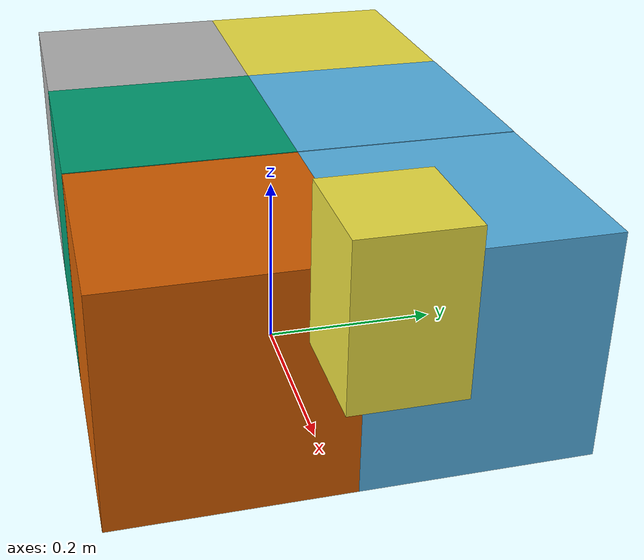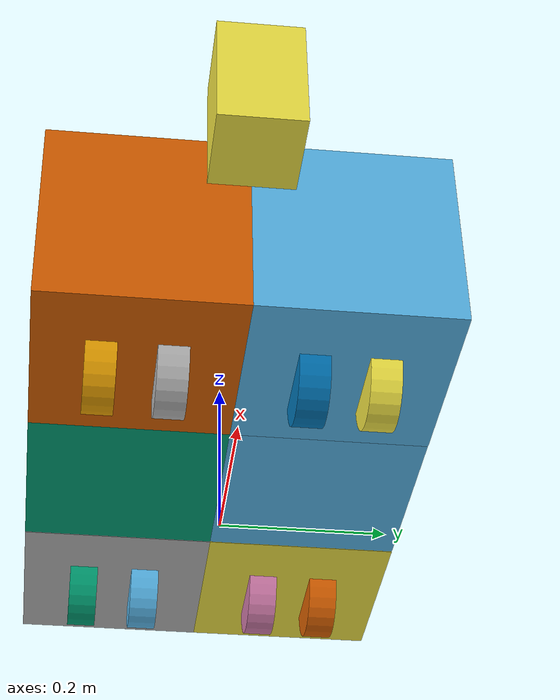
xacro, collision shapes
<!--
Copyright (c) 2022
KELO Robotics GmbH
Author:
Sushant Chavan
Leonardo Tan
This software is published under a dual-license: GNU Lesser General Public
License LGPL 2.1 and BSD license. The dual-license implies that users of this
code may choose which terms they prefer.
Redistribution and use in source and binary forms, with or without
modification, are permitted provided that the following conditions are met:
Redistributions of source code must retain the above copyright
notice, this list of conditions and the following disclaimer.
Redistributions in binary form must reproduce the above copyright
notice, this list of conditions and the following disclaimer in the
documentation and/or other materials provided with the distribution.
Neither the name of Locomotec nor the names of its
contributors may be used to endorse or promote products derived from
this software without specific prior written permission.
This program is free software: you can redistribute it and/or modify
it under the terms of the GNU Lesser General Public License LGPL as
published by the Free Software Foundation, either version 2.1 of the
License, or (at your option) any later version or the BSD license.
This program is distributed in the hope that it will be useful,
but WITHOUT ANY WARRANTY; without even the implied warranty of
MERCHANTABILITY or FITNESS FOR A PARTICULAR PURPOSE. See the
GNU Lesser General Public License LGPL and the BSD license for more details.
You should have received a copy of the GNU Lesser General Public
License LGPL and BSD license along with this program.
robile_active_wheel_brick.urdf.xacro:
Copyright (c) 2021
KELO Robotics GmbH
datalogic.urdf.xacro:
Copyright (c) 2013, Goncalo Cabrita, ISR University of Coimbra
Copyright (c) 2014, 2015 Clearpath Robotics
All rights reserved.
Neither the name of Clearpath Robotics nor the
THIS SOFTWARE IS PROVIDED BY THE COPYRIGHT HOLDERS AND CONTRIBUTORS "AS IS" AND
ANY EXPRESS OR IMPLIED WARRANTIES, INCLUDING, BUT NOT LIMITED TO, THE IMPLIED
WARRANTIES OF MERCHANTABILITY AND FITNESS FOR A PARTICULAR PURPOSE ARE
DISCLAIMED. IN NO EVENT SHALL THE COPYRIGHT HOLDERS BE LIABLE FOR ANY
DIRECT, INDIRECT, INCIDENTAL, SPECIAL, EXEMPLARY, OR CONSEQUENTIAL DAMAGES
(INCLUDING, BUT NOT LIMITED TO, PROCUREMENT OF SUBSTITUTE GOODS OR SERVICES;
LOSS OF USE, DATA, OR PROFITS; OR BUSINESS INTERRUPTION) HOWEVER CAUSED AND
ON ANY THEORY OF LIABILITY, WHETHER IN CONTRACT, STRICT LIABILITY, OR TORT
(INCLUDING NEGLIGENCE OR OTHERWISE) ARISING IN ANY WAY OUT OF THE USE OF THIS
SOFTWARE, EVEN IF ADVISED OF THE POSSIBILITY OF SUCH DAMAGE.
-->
<?xml version='1.0'?>

<robot xmlns:xacro="http://ros.org/wiki/xacro" name="4_wheel_lidar_config" >

    <xacro:arg name="movable_joints" default="true"/>

    <!-- Include desired robile bricks -->
    <xacro:include filename="$(find robile_description)/urdf/robile_bricks/robile_active_wheel_brick.urdf.xacro" />
    <xacro:include filename="$(find robile_description)/urdf/robile_bricks/robile_cpu_brick.urdf.xacro" />
    <xacro:include filename="$(find robile_description)/urdf/robile_bricks/robile_master_battery_brick.urdf.xacro" />
    <xacro:include filename="$(find robile_description)/urdf/sensors/datalogic.urdf.xacro" />

    <link name="base_link"/>

    <!-- Build platform using robile bricks -->
    <xacro:robile_active_wheel_brick name="robile_1" parent="base_link" movable_joints="$(arg movable_joints)">
        <origin xyz="0.233 0.1165 0.05" rpy="0.0 0.0 0.0"/>
    </xacro:robile_active_wheel_brick>

    <xacro:robile_active_wheel_brick name="robile_2" parent="base_link" movable_joints="$(arg movable_joints)">
        <origin xyz="0.233 -0.1165 0.05" rpy="0.0 0.0 0.0"/>
    </xacro:robile_active_wheel_brick>

    <xacro:robile_cpu_brick name="robile_3" parent="base_link">
        <origin xyz="0.0 0.1165 0.05" rpy="0.0 0.0 0.0"/>
    </xacro:robile_cpu_brick>

    <xacro:robile_master_battery_brick name="robile_4" parent="base_link">
        <origin xyz="0.0 -0.1165 0.05" rpy="0.0 0.0 0.0"/>
    </xacro:robile_master_battery_brick>

    <xacro:robile_active_wheel_brick name="robile_5" parent="base_link" movable_joints="$(arg movable_joints)">
        <origin xyz="-0.233 0.1165 0.05" rpy="0.0 0.0 0.0"/>
    </xacro:robile_active_wheel_brick>

    <xacro:robile_active_wheel_brick name="robile_6" parent="base_link" movable_joints="$(arg movable_joints)">
        <origin xyz="-0.233 -0.1165 0.05" rpy="0.0 0.0 0.0"/>
    </xacro:robile_active_wheel_brick>

    <!-- Datalogic LASER -->
    <xacro:datalogic name="base_laser_front" parent="base_link" topic="base_scan">
        <origin xyz="0.43 0.0 0.32" rpy="0 0 0"/>
    </xacro:datalogic>

</robot>

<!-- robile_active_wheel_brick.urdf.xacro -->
<robot xmlns:xacro="http://www.ros.org/wiki/xacro">

    <xacro:macro name="robile_active_wheel_brick" params="name parent *origin">

        <!-- Include xacro files-->
        <xacro:include filename="$(find robile_description)/urdf/base_macros/robile_body.urdf.xacro" />
        <xacro:include filename="$(find robile_description)/urdf/base_macros/kelo_drive.urdf.xacro" />

        <joint name="${name}_joint" type="fixed">
            <xacro:insert_block name="origin" />
            <parent link="${parent}"/>
            <child link="${name}_link" />
        </joint>

        <xacro:robile_body name="${name}" with_wheel="true" color="red"/>

        <xacro:kelo_drive name="${name}_drive" parent="${name}_link">
            <origin xyz="0 0 0" rpy="0 0 0.0"/>
        </xacro:kelo_drive>

    </xacro:macro>

</robot>

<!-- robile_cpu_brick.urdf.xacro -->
<robot xmlns:xacro="http://www.ros.org/wiki/xacro">

    <xacro:macro name="robile_cpu_brick" params="name parent *origin">

        <!-- Properties for cpu brick -->
        <xacro:property name="color" value="yellow"/>
        <xacro:property name="robile_size_x" value="0.233"/>
        <xacro:property name="robile_size_y" value="0.233"/>
        <xacro:property name="robile_size_z" value="0.239"/>

        <joint name="${name}_joint" type="fixed">
            <xacro:insert_block name="origin" />
            <parent link="${parent}"/>
            <child link="${name}_link" />
        </joint>

        <link name="${name}_link">
            <!-- Aluminium casing -->
            <visual>
                <origin xyz="0 0 0" rpy="0 0 0"/>
                <geometry>
                    <mesh filename="package://robile_description/meshes/robile_brick_housing/general_brick_housing.dae" scale="1 1 1"/>
                </geometry>
            </visual>

            <!-- robile lid -->
            <visual>
                <origin xyz="0 0 0" rpy="0 0 0"/>
                <geometry>
                    <mesh filename="package://robile_description/meshes/robile_brick_housing/lid.dae" scale="1 1 1"/>
                </geometry>
            </visual>

            <!-- robile lid cover (color passed as a parameter) -->
            <visual>
                <origin xyz="0 0 0" rpy="0 0 0"/>
                <geometry>
                    <mesh filename="package://robile_description/meshes/robile_brick_housing/lid_cover_${color}.dae" scale="1 1 1"/>
                </geometry>
            </visual>

            <!-- Collision box for brick housing -->
            <collision>
                <origin xyz="0 0 ${robile_size_z/2}" rpy="0 0 0"/>
                <geometry>
                    <box size="${robile_size_x} ${robile_size_y} ${robile_size_z}" />
                </geometry>
            </collision>

            <!-- Inertia for cpu brick -->
            <inertial>
                <mass value="6.44075" />
                <origin xyz="0.00413 0.0053 0.10792" />
                <inertia  ixx="0.059819" ixy="0.000584" ixz="-0.000138" iyy="0.059845" iyz="-0.000069" izz="0.06767" />
            </inertial>

        </link>

    </xacro:macro>

</robot>

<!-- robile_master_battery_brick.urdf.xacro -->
<robot xmlns:xacro="http://www.ros.org/wiki/xacro">

    <xacro:macro name="robile_master_battery_brick" params="name parent *origin">
        <!-- Properties for master battery brick -->
        <xacro:property name="color" value="green"/>
        <xacro:property name="robile_size_x" value="0.233"/>
        <xacro:property name="robile_size_y" value="0.233"/>
        <xacro:property name="robile_size_z" value="0.239"/>

        <joint name="${name}_joint" type="fixed">
            <xacro:insert_block name="origin" />
            <parent link="${parent}"/>
            <child link="${name}_link" />
        </joint>

        <link name="${name}_link">
            <!-- Aluminium casing -->
            <visual>
                <origin xyz="0 0 0" rpy="0 0 0"/>
                <geometry>
                    <mesh filename="package://robile_description/meshes/robile_brick_housing/general_brick_housing.dae" scale="1 1 1"/>
                </geometry>
            </visual>

            <!-- robile lid -->
            <visual>
                <origin xyz="0 0 0" rpy="0 0 0"/>
                <geometry>
                    <mesh filename="package://robile_description/meshes/robile_brick_housing/lid.dae" scale="1 1 1"/>
                </geometry>
            </visual>

            <!-- robile lid cover (color passed as a parameter) -->
            <visual>
                <origin xyz="0 0 0" rpy="0 0 0"/>
                <geometry>
                    <mesh filename="package://robile_description/meshes/robile_brick_housing/lid_cover_${color}.dae" scale="1 1 1"/>
                </geometry>
            </visual>

            <!-- Collision box for brick housing -->
            <collision>
                <origin xyz="0 0 ${robile_size_z/2}" rpy="0 0 0"/>
                <geometry>
                    <box size="${robile_size_x} ${robile_size_y} ${robile_size_z}" />
                </geometry>
            </collision>

            <!-- Inertia for master battery brick -->
            <inertial>
                <mass value="11.649" />
                <origin xyz="0 -0.00012 0.09665" />
                <inertia  ixx="0.090592" ixy="-0.0000008" ixz="0.000011" iyy="0.097288" iyz="0.000217" izz="0.101994" />
            </inertial>

        </link>

    </xacro:macro>

</robot>

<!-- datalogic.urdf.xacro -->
<robot xmlns:xacro="http://www.ros.org/wiki/xacro">

    <xacro:include filename="$(find robile_description)/urdf/sensors/common.xacro" />

    <xacro:macro name="datalogic" params="*origin name:=base_laser_front
                                          topic:=base_scan parent:=base_link
                                          sample_size:=540 update_rate:=10
                                          min_angle:=-2.35619 max_angle:=2.35619
                                          min_range:=0.1 max_range:=30.0
                                          robot_namespace:=/ use_gpu:=true
                                          visualize:=false" >

        <joint name="${name}_joint" type="fixed">
            <axis xyz="0 1 0" />
            <xacro:insert_block name="origin"/>
            <parent link="${parent}"/>
            <child link="${name}_link"/>
        </joint>

        <link name="${name}_link">
            <inertial>
                <mass value="1.1" />
                <origin xyz="0 0 -0.05" rpy="0 0 0" />
                <inertia ixx="${0.0833333 * 1.1 * (0.102*0.102 + 0.152*0.152)}" ixy="0.0" ixz="0.0"
                         iyy="${0.0833333 * 1.1 * (0.105*0.105 + 0.152*0.152)}" iyz="0.0"
                         izz="${0.0833333 * 1.1 * (0.105*0.105 + 0.102*0.102)}" />
            </inertial>
            <visual>
                <origin xyz="-0.1 -0.08 -0.05" rpy="0 0 3.14159" />
                <geometry>
                    <!-- Origin of this mesh is the focal point of the LIDAR. -->
                    <mesh filename="package://robile_description/meshes/sensors/datalogic.dae" />
                </geometry>
            </visual>
            <collision>
                <origin xyz="-0.025 0 -0.025" rpy="0 0 0" />
                <geometry>
                    <box size="0.105 0.1 0.15" />
                </geometry>
            </collision>
        </link>

        <xacro:if value="${use_gpu}">
            <xacro:gazebo_laser_plugin name="${name}" topic="${topic}" sample_size="${sample_size}"
                                       update_rate="${update_rate}" min_angle="${min_angle}"
                                       max_angle="${max_angle}" min_range="${min_range}" max_range="${max_range}"
                                       robot_namespace="${robot_namespace}" visualize="${visualize}"
                                       sensor_type="gpu_ray" plugin_filename="libgazebo_ros_gpu_laser"/>
        </xacro:if>
        <xacro:unless value="${use_gpu}">
            <xacro:gazebo_laser_plugin name="${name}" topic="${topic}" sample_size="${sample_size}"
                                       update_rate="${update_rate}" min_angle="${min_angle}"
                                       max_angle="${max_angle}" min_range="${min_range}" max_range="${max_range}"
                                       robot_namespace="${robot_namespace}" visualize="${visualize}"
                                       sensor_type="ray" plugin_filename="libgazebo_ros_laser"/>
        </xacro:unless>

    </xacro:macro>
</robot>

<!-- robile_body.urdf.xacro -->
<robot xmlns:xacro="http://www.ros.org/wiki/xacro">

    <xacro:macro name="robile_body" params="name color:=yellow with_wheel:=false">

        <!-- Include required xacro files -->
        <xacro:include filename="$(find robile_description)/urdf/base_macros/common.xacro" />

        <!-- Properties for a robile brick -->
        <xacro:property name="robile_size_x" value="0.233"/>
        <xacro:property name="robile_size_y" value="0.233"/>
        <xacro:property name="robile_size_z" value="0.239"/>
        <xacro:property name="center_of_mass_x" value="0.0005"/>
        <xacro:property name="center_of_mass_y" value="0.0001"/>
        <xacro:property name="center_of_mass_z" value="0.119"/>

        <link name="${name}_link">

            <!-- Aluminium casing of the robile -->
            <visual>
                <origin xyz="0 0 0" rpy="0 0 0"/>
                <geometry>
                    <xacro:if value="${with_wheel}">
                        <mesh filename="package://robile_description/meshes/robile/wheeled_robile_body.dae" scale="1 1 1"/>
                    </xacro:if>
                    <xacro:unless value="${with_wheel}">
                        <mesh filename="package://robile_description/meshes/robile/general_robile_body.dae" scale="1 1 1"/>
                    </xacro:unless>
                </geometry>
            </visual>

            <!-- robile lid -->
            <visual>
                <origin xyz="0 0 0" rpy="0 0 0"/>
                <geometry>
                    <mesh filename="package://robile_description/meshes/robile/robile_lid.dae" scale="1 1 1"/>
                </geometry>
            </visual>

            <!-- robile lid cover (color passed as a parameter) -->
            <visual>
                <origin xyz="0 0 0" rpy="0 0 0"/>
                <geometry>
                    <mesh filename="package://robile_description/meshes/robile/robile_lid_cover_${color}.dae" scale="1 1 1"/>
                </geometry>
            </visual>

            <!-- Collision box for robile body -->
            <collision>
                <origin xyz="${center_of_mass_x} ${center_of_mass_y} ${center_of_mass_z}" rpy="0 0 0"/>
                <geometry>
                    <box size="${robile_size_x} ${robile_size_y} ${robile_size_z}" />
                </geometry>
            </collision>

            <!-- Inertia for robile body -->
            <xacro:cuboid_inertia mass="5.0"
                                length="${robile_size_x}"
                                breadth="${robile_size_y}"
                                height="${robile_size_z}"
                                center_of_mass_x="${center_of_mass_x}"
                                center_of_mass_y="${center_of_mass_y}"
                                center_of_mass_z="${center_of_mass_z}"/>
        </link>

    </xacro:macro>

</robot>

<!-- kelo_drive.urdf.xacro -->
<robot xmlns:xacro="http://www.ros.org/wiki/xacro">

    <xacro:macro name="kelo_drive" params="name parent *origin movable_joints:=true">

        <xacro:include filename="$(find robile_description)/urdf/base_macros/common.xacro" />
        <xacro:include filename="$(find robile_description)/urdf/base_macros/kelo_drive_wheel.urdf.xacro" />

        <!-- PIVOT -->
        <xacro:if value="${movable_joints}">
            <joint name="${name}_pivot_joint" type="continuous">
                <xacro:insert_block name="origin" />
                <axis xyz="0 0 1"/>
                <parent link="${parent}"/>
                <child link="${name}_pivot_link" />
            </joint>

            <transmission name="${name}_pivot_transmission">
                <type>transmission_interface/SimpleTransmission</type>
                <joint name="${name}_pivot_joint">
                    <hardwareInterface>hardware_interface/EffortJointInterface</hardwareInterface>
                </joint>
                <actuator name="${name}_pivot_motor">
                    <hardwareInterface>hardware_interface/EffortJointInterface</hardwareInterface>
                    <mechanicalReduction>1</mechanicalReduction>
                </actuator>
            </transmission>
        </xacro:if>
        <xacro:unless value="${movable_joints}">
            <joint name="${name}_pivot_joint" type="fixed">
                <xacro:insert_block name="origin" />
                <axis xyz="0 0 1"/>
                <parent link="${parent}"/>
                <child link="${name}_pivot_link" />
            </joint>
        </xacro:unless>

        <link name="${name}_pivot_link">
            <visual>
                <origin xyz="0 0 0" rpy="0 0 0"/>
                <geometry>
                    <mesh filename="package://robile_description/meshes/kelo_drive/kelo_drive_base.dae" scale="1 1 1"/>
                </geometry>
            </visual>

            <!--TODO: Set the correct collisions -->
            <collision>
                <origin xyz="0 0 0.07" rpy="0 0 0"/>
                <geometry>
                    <box size="0.105 0.154 0.025" />
                </geometry>
            </collision>

            <inertial>
                <mass value="1.0006" />
                <origin xyz="0.00034 -0.00046 0.0504" />
                <inertia  ixx="0.0023" ixy="0.000008" ixz="0.000011" iyy="0.00249" iyz="-0.000014" izz="0.00288" />
            </inertial>
        </link>

        <!-- LEFT HUB WHEEL -->
        <xacro:kelo_drive_wheel name="${name}_left_hub_wheel" parent="${name}_pivot_link" movable_joints="${movable_joints}">
            <origin xyz="-0.01 0.039326 0.001514" rpy="0 0 0.0"/>
        </xacro:kelo_drive_wheel>

        <!-- RIGHT HUB WHEEL -->
        <xacro:kelo_drive_wheel name="${name}_right_hub_wheel" parent="${name}_pivot_link" movable_joints="${movable_joints}">
            <origin xyz="-0.01 -0.039326 0.001514" rpy="0 0 0.0"/>
        </xacro:kelo_drive_wheel>

    </xacro:macro>

</robot>

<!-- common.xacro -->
<robot xmlns:xacro="http://www.ros.org/wiki/xacro">

    <xacro:macro name="cylinder_inertia" params="mass length radius
        center_of_mass_x:=0 center_of_mass_y:=0 center_of_mass_z:=0
        center_of_mass_roll:=0 center_of_mass_pitch:=0 center_of_mass_yaw:=0">
        <inertial>
            <origin xyz="${center_of_mass_x} ${center_of_mass_y} ${center_of_mass_z}"
                    rpy="${center_of_mass_roll} ${center_of_mass_pitch} ${center_of_mass_yaw}"/>
            <mass value="${mass}" />
            <inertia ixx="${(mass/12)*(3*radius*radius + length*length)}"
                     iyy="${(mass/12)*(3*radius*radius + length*length)}"
                     iyz="0.0" ixy="0.0" ixz="0.0"
                     izz="${(mass/2)*(radius*radius)}" />
        </inertial>
    </xacro:macro>

    <xacro:macro name="cuboid_inertia" params="mass length breadth height
        center_of_mass_x:=0 center_of_mass_y:=0 center_of_mass_z:=0
        center_of_mass_roll:=0 center_of_mass_pitch:=0 center_of_mass_yaw:=0">
        <inertial>
            <origin xyz="${center_of_mass_x} ${center_of_mass_y} ${center_of_mass_z}"
                    rpy="${center_of_mass_roll} ${center_of_mass_pitch} ${center_of_mass_yaw}"/>
            <mass value="${mass}" />
            <inertia ixx="${(mass/12)*(breadth*breadth + height*height)}"
                     iyy="${(mass/12)*(height*height + length*length)}"
                     iyz="0.0" ixy="0.0" ixz="0.0"
                     izz="${(mass/12)*(breadth*breadth + length*length)}" />
        </inertial>
    </xacro:macro>

    <xacro:macro name="sphere_inertia" params="mass radius
        center_of_mass_x:=0 center_of_mass_y:=0 center_of_mass_z:=0
        center_of_mass_roll:=0 center_of_mass_pitch:=0 center_of_mass_yaw:=0">
        <inertial>
            <origin xyz="${center_of_mass_x} ${center_of_mass_y} ${center_of_mass_z}"
                    rpy="${center_of_mass_roll} ${center_of_mass_pitch} ${center_of_mass_yaw}"/>
            <mass value="${mass}" />
            <inertia ixx="${(mass*0.4)*(radius*radius)}"
                     iyy="${(mass*0.4)*(radius*radius)}"
                     iyz="0.0" ixy="0.0" ixz="0.0"
                     izz="${(mass*0.4)*(radius*radius)}" />
        </inertial>
    </xacro:macro>

</robot>

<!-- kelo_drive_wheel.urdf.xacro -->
<robot xmlns:xacro="http://www.ros.org/wiki/xacro">

    <xacro:macro name="kelo_drive_wheel" params="name parent *origin movable_joints:=true">

        <xacro:include filename="$(find robile_description)/urdf/base_macros/common.xacro" />

        <xacro:if value="${movable_joints}">
            <joint name="${name}_joint" type="continuous">
                <xacro:insert_block name="origin" />
                <axis xyz="0 1 0"/>
                <parent link="${parent}"/>
                <child link="${name}_link" />
            </joint>

            <transmission name="${name}_transmission">
                <type>transmission_interface/SimpleTransmission</type>
                <joint name="${name}_joint">
                    <hardwareInterface>hardware_interface/EffortJointInterface</hardwareInterface>
                </joint>
                <actuator name="${name}_motor">
                    <hardwareInterface>hardware_interface/EffortJointInterface</hardwareInterface>
                    <mechanicalReduction>1</mechanicalReduction>
                </actuator>
            </transmission>
        </xacro:if>
        <xacro:unless value="${movable_joints}">
            <joint name="${name}_joint" type="fixed">
                <xacro:insert_block name="origin" />
                <axis xyz="0 1 0"/>
                <parent link="${parent}"/>
                <child link="${name}_link" />
            </joint>
        </xacro:unless>

        <link name="${name}_link">
            <visual>
                <origin xyz="0 0 0" rpy="0 0 0"/>
                <geometry>
                    <mesh filename="package://robile_description/meshes/kelo_drive/kelo_drive_wheel.dae" scale="1 1 1"/>
                </geometry>
            </visual>

            <collision>
                <origin xyz="0 0 0" rpy="1.570796327 0 0"/>
                <geometry>
                    <cylinder radius="0.0515" length="0.035"/>
                </geometry>
            </collision>

            <!--HACK: Use large cuboid inertias to fix the issue that the model breaks when JointVelocity controller is activated -->
            <xacro:cuboid_inertia mass="10.0" length="0.233" breadth="0.233" height="0.233"/>
        </link>

    </xacro:macro>

</robot>
